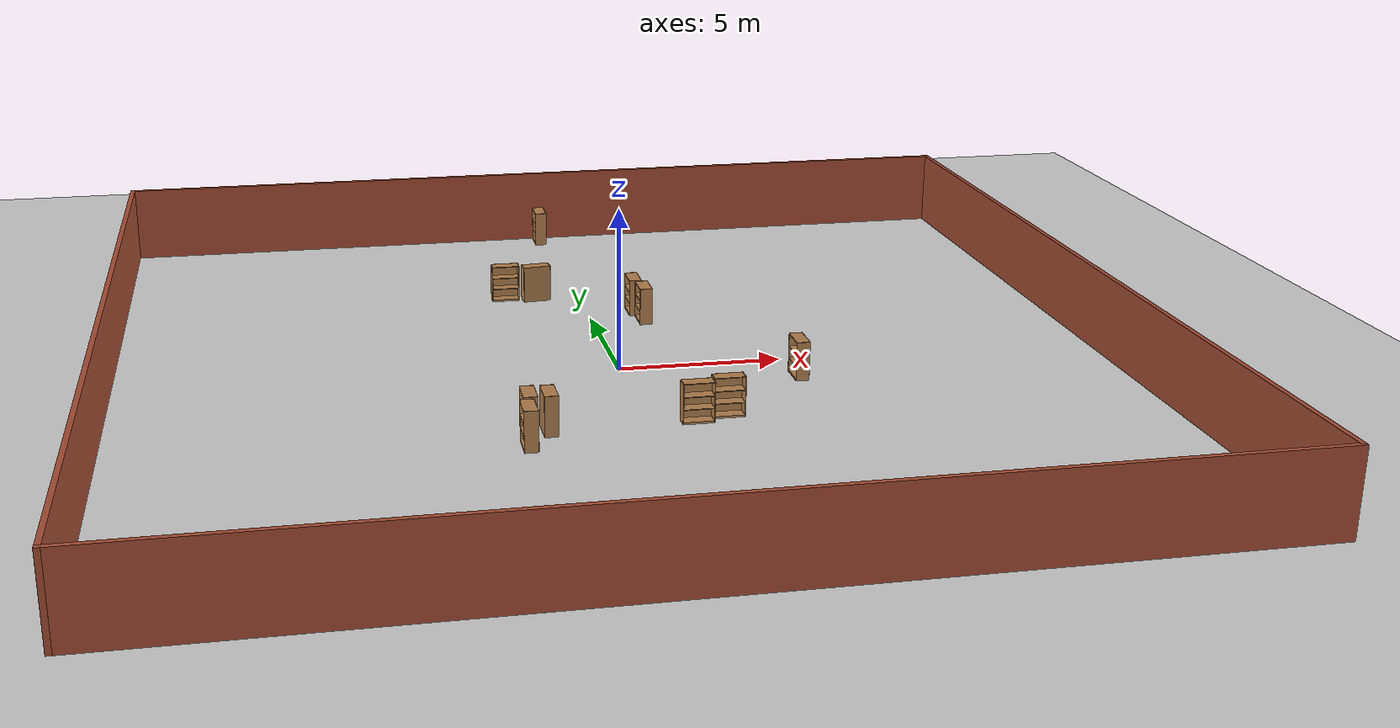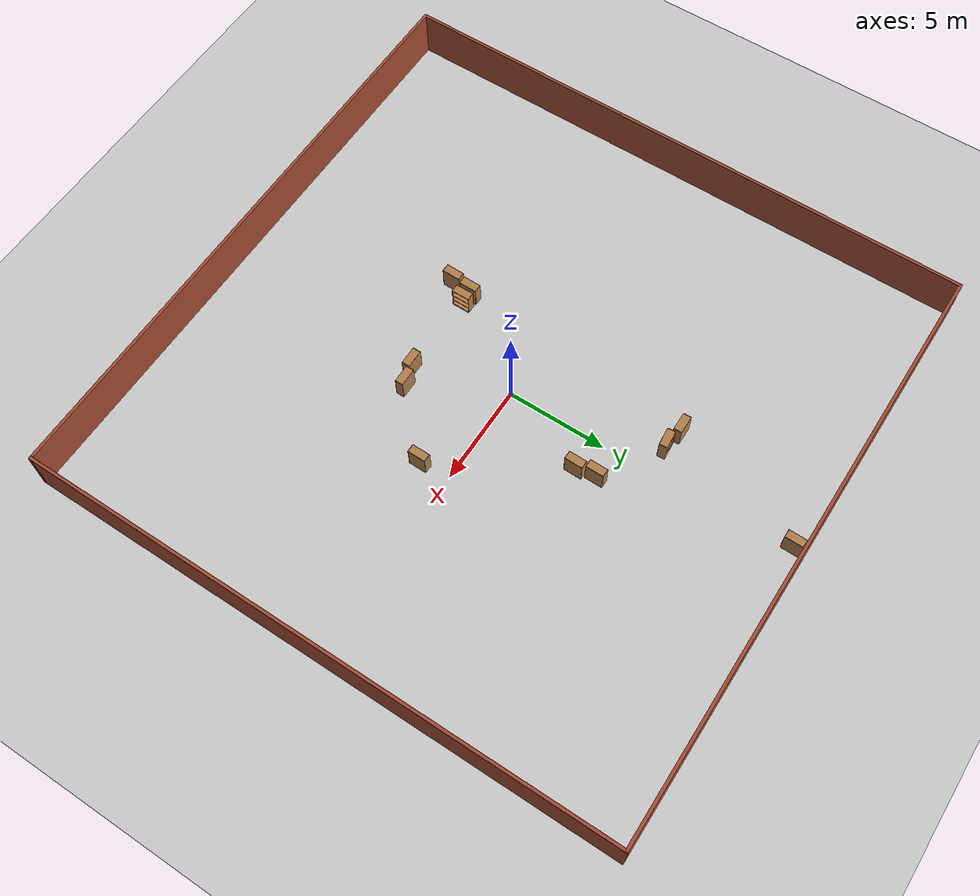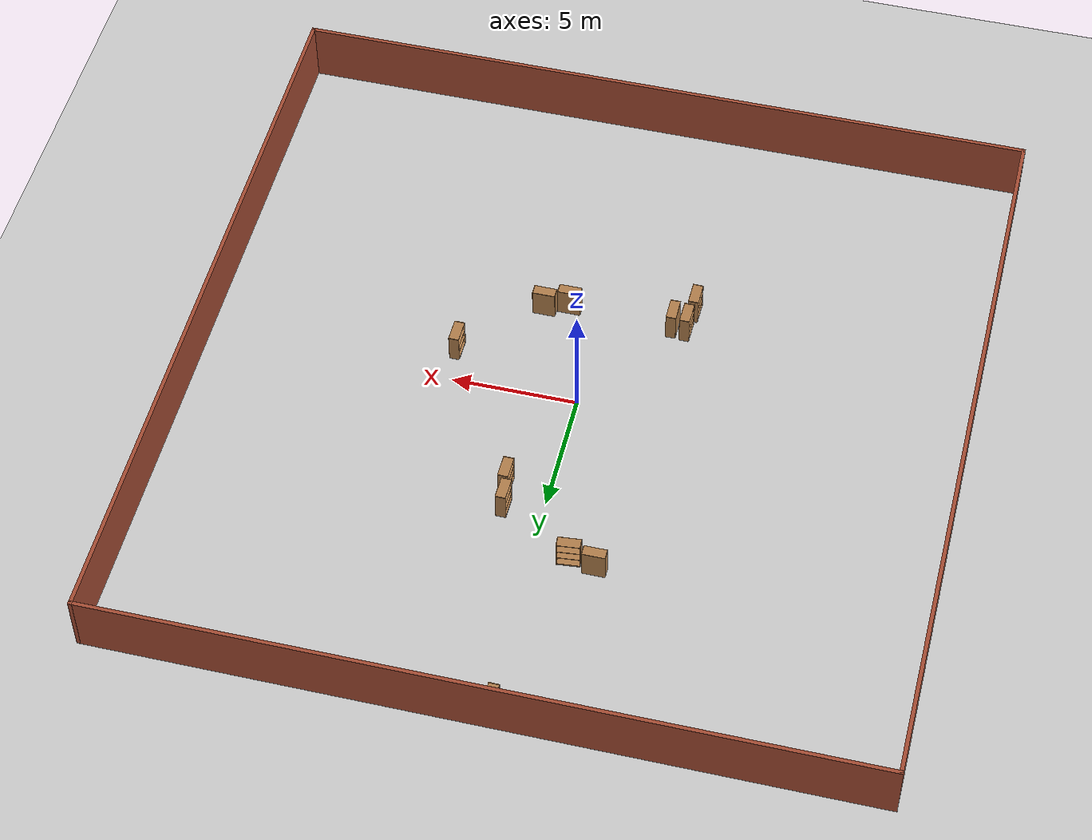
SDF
<sdf version="1.6">
 <world name="default">
  <model name="ground_plane">
   <static>1</static>
   <link name="link">
    <collision name="collision">
     <geometry><plane><normal>0 0 1</normal><size>100 100</size></plane></geometry>
     <surface>
      <contact><collide_bitmask>65535</collide_bitmask></contact>
      <friction><ode><mu>100</mu><mu2>50</mu2></ode></friction>
     </surface>
    </collision>
    <visual name="visual">
     <cast_shadows>0</cast_shadows>
     <geometry><plane><normal>0 0 1</normal><size>100 100</size></plane></geometry>
     <material>
      <script><uri>file://media/materials/scripts/gazebo.material</uri><name>Gazebo/Grey</name></script>
     </material>
    </visual>
   </link>
  </model>
  <model name="30x30_0">
   <link name="Wall_0">
    <collision name="Wall_0_Collision">
     <geometry><box><size>30.15 0.15 2.5</size></box></geometry>
     <pose>0 0 1.25 0 -0 0</pose>
    </collision>
    <visual name="Wall_0_Visual">
     <pose>0 0 1.25 0 -0 0</pose>
     <geometry><box><size>30.15 0.15 2.5</size></box></geometry>
     <material>
      <script><uri>file://media/materials/scripts/gazebo.material</uri><name>Gazebo/Bricks</name></script>
      <ambient>1 1 1 1</ambient>
     </material>
     <meta><layer>0</layer></meta>
    </visual>
    <pose>-15 0 0 0 -0 1.5708</pose>
   </link>
   <link name="Wall_1">
    <collision name="Wall_1_Collision">
     <geometry><box><size>30.15 0.15 2.5</size></box></geometry>
     <pose>0 0 1.25 0 -0 0</pose>
    </collision>
    <visual name="Wall_1_Visual">
     <pose>0 0 1.25 0 -0 0</pose>
     <geometry><box><size>30.15 0.15 2.5</size></box></geometry>
     <material>
      <script><uri>file://media/materials/scripts/gazebo.material</uri><name>Gazebo/Bricks</name></script>
      <ambient>1 1 1 1</ambient>
     </material>
     <meta><layer>0</layer></meta>
    </visual>
    <pose>0 15 0 0 -0 0</pose>
   </link>
   <link name="Wall_2">
    <collision name="Wall_2_Collision">
     <geometry><box><size>30.15 0.15 2.5</size></box></geometry>
     <pose>0 0 1.25 0 -0 0</pose>
    </collision>
    <visual name="Wall_2_Visual">
     <pose>0 0 1.25 0 -0 0</pose>
     <geometry><box><size>30.15 0.15 2.5</size></box></geometry>
     <material>
      <script><uri>file://media/materials/scripts/gazebo.material</uri><name>Gazebo/Bricks</name></script>
      <ambient>1 1 1 1</ambient>
     </material>
     <meta><layer>0</layer></meta>
    </visual>
    <pose>15 0 0 0 -0 -1.5708</pose>
   </link>
   <link name="Wall_3">
    <collision name="Wall_3_Collision">
     <geometry><box><size>30.15 0.15 2.5</size></box></geometry>
     <pose>0 0 1.25 0 -0 0</pose>
    </collision>
    <visual name="Wall_3_Visual">
     <pose>0 0 1.25 0 -0 0</pose>
     <geometry><box><size>30.15 0.15 2.5</size></box></geometry>
     <material>
      <script><uri>file://media/materials/scripts/gazebo.material</uri><name>Gazebo/Bricks</name></script>
      <ambient>1 1 1 1</ambient>
     </material>
     <meta><layer>0</layer></meta>
    </visual>
    <pose>0 -15 0 0 -0 3.14159</pose>
   </link>
   <static>1</static>
  </model>
  <model name="bookshelf_clone_clone_clone_0_clone_0_clone_3_clone_2_clone">
   <static>1</static>
   <link name="link">
    <inertial><mass>1</mass></inertial>
    <collision name="back">
     <pose>0 0.005 0.6 0 -0 0</pose>
     <geometry><box><size>0.9 0.01 1.2</size></box></geometry>
    </collision>
    <visual name="visual1">
     <pose>0 0.005 0.6 0 -0 0</pose>
     <geometry><box><size>0.9 0.01 1.2</size></box></geometry>
     <material>
      <script><uri>file://media/materials/scripts/gazebo.material</uri><name>Gazebo/Wood</name></script>
     </material>
    </visual>
    <collision name="left_side">
     <pose>0.45 -0.195 0.6 0 -0 0</pose>
     <geometry><box><size>0.02 0.4 1.2</size></box></geometry>
    </collision>
    <visual name="visual2">
     <pose>0.45 -0.195 0.6 0 -0 0</pose>
     <geometry><box><size>0.02 0.4 1.2</size></box></geometry>
     <material>
      <script><uri>file://media/materials/scripts/gazebo.material</uri><name>Gazebo/Wood</name></script>
     </material>
    </visual>
    <collision name="right_side">
     <pose>-0.45 -0.195 0.6 0 -0 0</pose>
     <geometry><box><size>0.02 0.4 1.2</size></box></geometry>
    </collision>
    <visual name="visual3">
     <pose>-0.45 -0.195 0.6 0 -0 0</pose>
     <geometry><box><size>0.02 0.4 1.2</size></box></geometry>
     <material>
      <script><uri>file://media/materials/scripts/gazebo.material</uri><name>Gazebo/Wood</name></script>
     </material>
    </visual>
    <collision name="bottom">
     <pose>0 -0.195 0.03 0 -0 0</pose>
     <geometry><box><size>0.88 0.4 0.06</size></box></geometry>
    </collision>
    <visual name="visual4">
     <pose>0 -0.195 0.03 0 -0 0</pose>
     <geometry><box><size>0.88 0.4 0.06</size></box></geometry>
     <material>
      <script><uri>file://media/materials/scripts/gazebo.material</uri><name>Gazebo/Wood</name></script>
     </material>
    </visual>
    <collision name="top">
     <pose>0 -0.195 1.19 0 -0 0</pose>
     <geometry><box><size>0.88 0.4 0.02</size></box></geometry>
    </collision>
    <visual name="visual5">
     <pose>0 -0.195 1.19 0 -0 0</pose>
     <geometry><box><size>0.88 0.4 0.02</size></box></geometry>
     <material>
      <script><uri>file://media/materials/scripts/gazebo.material</uri><name>Gazebo/Wood</name></script>
     </material>
    </visual>
    <collision name="low_shelf">
     <pose>0 -0.195 0.43 0 -0 0</pose>
     <geometry><box><size>0.88 0.4 0.02</size></box></geometry>
    </collision>
    <visual name="visual6">
     <pose>0 -0.195 0.43 0 -0 0</pose>
     <geometry><box><size>0.88 0.4 0.02</size></box></geometry>
     <material>
      <script><uri>file://media/materials/scripts/gazebo.material</uri><name>Gazebo/Wood</name></script>
     </material>
    </visual>
    <collision name="high_shelf">
     <pose>0 -0.195 0.8 0 -0 0</pose>
     <geometry><box><size>0.88 0.4 0.02</size></box></geometry>
    </collision>
    <visual name="visual7">
     <pose>0 -0.195 0.8 0 -0 0</pose>
     <geometry><box><size>0.88 0.4 0.02</size></box></geometry>
     <material>
      <script><uri>file://media/materials/scripts/gazebo.material</uri><name>Gazebo/Wood</name></script>
     </material>
    </visual>
   </link>
   <pose>2.33974 -4.06696 0 0 -0 0</pose>
  </model>
  <model name="bookshelf_clone_clone_clone_0_clone_0_clone_3_clone_2_clone_0">
   <static>1</static>
   <link name="link">
    <inertial><mass>1</mass></inertial>
    <collision name="back">
     <pose>0 0.005 0.6 0 -0 0</pose>
     <geometry><box><size>0.9 0.01 1.2</size></box></geometry>
    </collision>
    <visual name="visual1">
     <pose>0 0.005 0.6 0 -0 0</pose>
     <geometry><box><size>0.9 0.01 1.2</size></box></geometry>
     <material>
      <script><uri>file://media/materials/scripts/gazebo.material</uri><name>Gazebo/Wood</name></script>
     </material>
    </visual>
    <collision name="left_side">
     <pose>0.45 -0.195 0.6 0 -0 0</pose>
     <geometry><box><size>0.02 0.4 1.2</size></box></geometry>
    </collision>
    <visual name="visual2">
     <pose>0.45 -0.195 0.6 0 -0 0</pose>
     <geometry><box><size>0.02 0.4 1.2</size></box></geometry>
     <material>
      <script><uri>file://media/materials/scripts/gazebo.material</uri><name>Gazebo/Wood</name></script>
     </material>
    </visual>
    <collision name="right_side">
     <pose>-0.45 -0.195 0.6 0 -0 0</pose>
     <geometry><box><size>0.02 0.4 1.2</size></box></geometry>
    </collision>
    <visual name="visual3">
     <pose>-0.45 -0.195 0.6 0 -0 0</pose>
     <geometry><box><size>0.02 0.4 1.2</size></box></geometry>
     <material>
      <script><uri>file://media/materials/scripts/gazebo.material</uri><name>Gazebo/Wood</name></script>
     </material>
    </visual>
    <collision name="bottom">
     <pose>0 -0.195 0.03 0 -0 0</pose>
     <geometry><box><size>0.88 0.4 0.06</size></box></geometry>
    </collision>
    <visual name="visual4">
     <pose>0 -0.195 0.03 0 -0 0</pose>
     <geometry><box><size>0.88 0.4 0.06</size></box></geometry>
     <material>
      <script><uri>file://media/materials/scripts/gazebo.material</uri><name>Gazebo/Wood</name></script>
     </material>
    </visual>
    <collision name="top">
     <pose>0 -0.195 1.19 0 -0 0</pose>
     <geometry><box><size>0.88 0.4 0.02</size></box></geometry>
    </collision>
    <visual name="visual5">
     <pose>0 -0.195 1.19 0 -0 0</pose>
     <geometry><box><size>0.88 0.4 0.02</size></box></geometry>
     <material>
      <script><uri>file://media/materials/scripts/gazebo.material</uri><name>Gazebo/Wood</name></script>
     </material>
    </visual>
    <collision name="low_shelf">
     <pose>0 -0.195 0.43 0 -0 0</pose>
     <geometry><box><size>0.88 0.4 0.02</size></box></geometry>
    </collision>
    <visual name="visual6">
     <pose>0 -0.195 0.43 0 -0 0</pose>
     <geometry><box><size>0.88 0.4 0.02</size></box></geometry>
     <material>
      <script><uri>file://media/materials/scripts/gazebo.material</uri><name>Gazebo/Wood</name></script>
     </material>
    </visual>
    <collision name="high_shelf">
     <pose>0 -0.195 0.8 0 -0 0</pose>
     <geometry><box><size>0.88 0.4 0.02</size></box></geometry>
    </collision>
    <visual name="visual7">
     <pose>0 -0.195 0.8 0 -0 0</pose>
     <geometry><box><size>0.88 0.4 0.02</size></box></geometry>
     <material>
      <script><uri>file://media/materials/scripts/gazebo.material</uri><name>Gazebo/Wood</name></script>
     </material>
    </visual>
   </link>
   <pose>1.38752 -4.35604 0 0 -0 0</pose>
  </model>
  <model name="bookshelf_clone_0_clone_clone_2_clone_2_clone_3_clone_0_clone_0">
   <static>1</static>
   <link name="link">
    <inertial><mass>1</mass></inertial>
    <collision name="back">
     <pose>0 0.005 0.6 0 -0 0</pose>
     <geometry><box><size>0.9 0.01 1.2</size></box></geometry>
    </collision>
    <visual name="visual1">
     <pose>0 0.005 0.6 0 -0 0</pose>
     <geometry><box><size>0.9 0.01 1.2</size></box></geometry>
     <material>
      <script><uri>file://media/materials/scripts/gazebo.material</uri><name>Gazebo/Wood</name></script>
     </material>
    </visual>
    <collision name="left_side">
     <pose>0.45 -0.195 0.6 0 -0 0</pose>
     <geometry><box><size>0.02 0.4 1.2</size></box></geometry>
    </collision>
    <visual name="visual2">
     <pose>0.45 -0.195 0.6 0 -0 0</pose>
     <geometry><box><size>0.02 0.4 1.2</size></box></geometry>
     <material>
      <script><uri>file://media/materials/scripts/gazebo.material</uri><name>Gazebo/Wood</name></script>
     </material>
    </visual>
    <collision name="right_side">
     <pose>-0.45 -0.195 0.6 0 -0 0</pose>
     <geometry><box><size>0.02 0.4 1.2</size></box></geometry>
    </collision>
    <visual name="visual3">
     <pose>-0.45 -0.195 0.6 0 -0 0</pose>
     <geometry><box><size>0.02 0.4 1.2</size></box></geometry>
     <material>
      <script><uri>file://media/materials/scripts/gazebo.material</uri><name>Gazebo/Wood</name></script>
     </material>
    </visual>
    <collision name="bottom">
     <pose>0 -0.195 0.03 0 -0 0</pose>
     <geometry><box><size>0.88 0.4 0.06</size></box></geometry>
    </collision>
    <visual name="visual4">
     <pose>0 -0.195 0.03 0 -0 0</pose>
     <geometry><box><size>0.88 0.4 0.06</size></box></geometry>
     <material>
      <script><uri>file://media/materials/scripts/gazebo.material</uri><name>Gazebo/Wood</name></script>
     </material>
    </visual>
    <collision name="top">
     <pose>0 -0.195 1.19 0 -0 0</pose>
     <geometry><box><size>0.88 0.4 0.02</size></box></geometry>
    </collision>
    <visual name="visual5">
     <pose>0 -0.195 1.19 0 -0 0</pose>
     <geometry><box><size>0.88 0.4 0.02</size></box></geometry>
     <material>
      <script><uri>file://media/materials/scripts/gazebo.material</uri><name>Gazebo/Wood</name></script>
     </material>
    </visual>
    <collision name="low_shelf">
     <pose>0 -0.195 0.43 0 -0 0</pose>
     <geometry><box><size>0.88 0.4 0.02</size></box></geometry>
    </collision>
    <visual name="visual6">
     <pose>0 -0.195 0.43 0 -0 0</pose>
     <geometry><box><size>0.88 0.4 0.02</size></box></geometry>
     <material>
      <script><uri>file://media/materials/scripts/gazebo.material</uri><name>Gazebo/Wood</name></script>
     </material>
    </visual>
    <collision name="high_shelf">
     <pose>0 -0.195 0.8 0 -0 0</pose>
     <geometry><box><size>0.88 0.4 0.02</size></box></geometry>
    </collision>
    <visual name="visual7">
     <pose>0 -0.195 0.8 0 -0 0</pose>
     <geometry><box><size>0.88 0.4 0.02</size></box></geometry>
     <material>
      <script><uri>file://media/materials/scripts/gazebo.material</uri><name>Gazebo/Wood</name></script>
     </material>
    </visual>
   </link>
   <pose>-0.128268 14.4162 0 0 0 -1.58271</pose>
  </model>
  <model name="bookshelf_clone_0_clone_clone_2_clone_2_clone_3_clone_0_clone_clone_0">
   <static>1</static>
   <link name="link">
    <inertial><mass>1</mass></inertial>
    <collision name="back">
     <pose>0 0.005 0.6 0 -0 0</pose>
     <geometry><box><size>0.9 0.01 1.2</size></box></geometry>
    </collision>
    <visual name="visual1">
     <pose>0 0.005 0.6 0 -0 0</pose>
     <geometry><box><size>0.9 0.01 1.2</size></box></geometry>
     <material>
      <script><uri>file://media/materials/scripts/gazebo.material</uri><name>Gazebo/Wood</name></script>
     </material>
    </visual>
    <collision name="left_side">
     <pose>0.45 -0.195 0.6 0 -0 0</pose>
     <geometry><box><size>0.02 0.4 1.2</size></box></geometry>
    </collision>
    <visual name="visual2">
     <pose>0.45 -0.195 0.6 0 -0 0</pose>
     <geometry><box><size>0.02 0.4 1.2</size></box></geometry>
     <material>
      <script><uri>file://media/materials/scripts/gazebo.material</uri><name>Gazebo/Wood</name></script>
     </material>
    </visual>
    <collision name="right_side">
     <pose>-0.45 -0.195 0.6 0 -0 0</pose>
     <geometry><box><size>0.02 0.4 1.2</size></box></geometry>
    </collision>
    <visual name="visual3">
     <pose>-0.45 -0.195 0.6 0 -0 0</pose>
     <geometry><box><size>0.02 0.4 1.2</size></box></geometry>
     <material>
      <script><uri>file://media/materials/scripts/gazebo.material</uri><name>Gazebo/Wood</name></script>
     </material>
    </visual>
    <collision name="bottom">
     <pose>0 -0.195 0.03 0 -0 0</pose>
     <geometry><box><size>0.88 0.4 0.06</size></box></geometry>
    </collision>
    <visual name="visual4">
     <pose>0 -0.195 0.03 0 -0 0</pose>
     <geometry><box><size>0.88 0.4 0.06</size></box></geometry>
     <material>
      <script><uri>file://media/materials/scripts/gazebo.material</uri><name>Gazebo/Wood</name></script>
     </material>
    </visual>
    <collision name="top">
     <pose>0 -0.195 1.19 0 -0 0</pose>
     <geometry><box><size>0.88 0.4 0.02</size></box></geometry>
    </collision>
    <visual name="visual5">
     <pose>0 -0.195 1.19 0 -0 0</pose>
     <geometry><box><size>0.88 0.4 0.02</size></box></geometry>
     <material>
      <script><uri>file://media/materials/scripts/gazebo.material</uri><name>Gazebo/Wood</name></script>
     </material>
    </visual>
    <collision name="low_shelf">
     <pose>0 -0.195 0.43 0 -0 0</pose>
     <geometry><box><size>0.88 0.4 0.02</size></box></geometry>
    </collision>
    <visual name="visual6">
     <pose>0 -0.195 0.43 0 -0 0</pose>
     <geometry><box><size>0.88 0.4 0.02</size></box></geometry>
     <material>
      <script><uri>file://media/materials/scripts/gazebo.material</uri><name>Gazebo/Wood</name></script>
     </material>
    </visual>
    <collision name="high_shelf">
     <pose>0 -0.195 0.8 0 -0 0</pose>
     <geometry><box><size>0.88 0.4 0.02</size></box></geometry>
    </collision>
    <visual name="visual7">
     <pose>0 -0.195 0.8 0 -0 0</pose>
     <geometry><box><size>0.88 0.4 0.02</size></box></geometry>
     <material>
      <script><uri>file://media/materials/scripts/gazebo.material</uri><name>Gazebo/Wood</name></script>
     </material>
    </visual>
   </link>
   <pose>5.38842 -1.4871 0 0 0 -1.58271</pose>
  </model>
  <model name="bookshelf_clone_0_clone_clone_2_clone_2_clone_3_clone_0_clone_clone_clone">
   <static>1</static>
   <link name="link">
    <inertial><mass>1</mass></inertial>
    <collision name="back">
     <pose>0 0.005 0.6 0 -0 0</pose>
     <geometry><box><size>0.9 0.01 1.2</size></box></geometry>
    </collision>
    <visual name="visual1">
     <pose>0 0.005 0.6 0 -0 0</pose>
     <geometry><box><size>0.9 0.01 1.2</size></box></geometry>
     <material>
      <script><uri>file://media/materials/scripts/gazebo.material</uri><name>Gazebo/Wood</name></script>
     </material>
    </visual>
    <collision name="left_side">
     <pose>0.45 -0.195 0.6 0 -0 0</pose>
     <geometry><box><size>0.02 0.4 1.2</size></box></geometry>
    </collision>
    <visual name="visual2">
     <pose>0.45 -0.195 0.6 0 -0 0</pose>
     <geometry><box><size>0.02 0.4 1.2</size></box></geometry>
     <material>
      <script><uri>file://media/materials/scripts/gazebo.material</uri><name>Gazebo/Wood</name></script>
     </material>
    </visual>
    <collision name="right_side">
     <pose>-0.45 -0.195 0.6 0 -0 0</pose>
     <geometry><box><size>0.02 0.4 1.2</size></box></geometry>
    </collision>
    <visual name="visual3">
     <pose>-0.45 -0.195 0.6 0 -0 0</pose>
     <geometry><box><size>0.02 0.4 1.2</size></box></geometry>
     <material>
      <script><uri>file://media/materials/scripts/gazebo.material</uri><name>Gazebo/Wood</name></script>
     </material>
    </visual>
    <collision name="bottom">
     <pose>0 -0.195 0.03 0 -0 0</pose>
     <geometry><box><size>0.88 0.4 0.06</size></box></geometry>
    </collision>
    <visual name="visual4">
     <pose>0 -0.195 0.03 0 -0 0</pose>
     <geometry><box><size>0.88 0.4 0.06</size></box></geometry>
     <material>
      <script><uri>file://media/materials/scripts/gazebo.material</uri><name>Gazebo/Wood</name></script>
     </material>
    </visual>
    <collision name="top">
     <pose>0 -0.195 1.19 0 -0 0</pose>
     <geometry><box><size>0.88 0.4 0.02</size></box></geometry>
    </collision>
    <visual name="visual5">
     <pose>0 -0.195 1.19 0 -0 0</pose>
     <geometry><box><size>0.88 0.4 0.02</size></box></geometry>
     <material>
      <script><uri>file://media/materials/scripts/gazebo.material</uri><name>Gazebo/Wood</name></script>
     </material>
    </visual>
    <collision name="low_shelf">
     <pose>0 -0.195 0.43 0 -0 0</pose>
     <geometry><box><size>0.88 0.4 0.02</size></box></geometry>
    </collision>
    <visual name="visual6">
     <pose>0 -0.195 0.43 0 -0 0</pose>
     <geometry><box><size>0.88 0.4 0.02</size></box></geometry>
     <material>
      <script><uri>file://media/materials/scripts/gazebo.material</uri><name>Gazebo/Wood</name></script>
     </material>
    </visual>
    <collision name="high_shelf">
     <pose>0 -0.195 0.8 0 -0 0</pose>
     <geometry><box><size>0.88 0.4 0.02</size></box></geometry>
    </collision>
    <visual name="visual7">
     <pose>0 -0.195 0.8 0 -0 0</pose>
     <geometry><box><size>0.88 0.4 0.02</size></box></geometry>
     <material>
      <script><uri>file://media/materials/scripts/gazebo.material</uri><name>Gazebo/Wood</name></script>
     </material>
    </visual>
   </link>
   <pose>1.70564 5.50921 0 0 0 -1.58271</pose>
  </model>
  <model name="bookshelf_clone_0_clone_clone_2_clone_2_clone_3_clone_0_clone_2_clone">
   <static>1</static>
   <link name="link">
    <inertial><mass>1</mass></inertial>
    <collision name="back">
     <pose>0 0.005 0.6 0 -0 0</pose>
     <geometry><box><size>0.9 0.01 1.2</size></box></geometry>
    </collision>
    <visual name="visual1">
     <pose>0 0.005 0.6 0 -0 0</pose>
     <geometry><box><size>0.9 0.01 1.2</size></box></geometry>
     <material>
      <script><uri>file://media/materials/scripts/gazebo.material</uri><name>Gazebo/Wood</name></script>
     </material>
    </visual>
    <collision name="left_side">
     <pose>0.45 -0.195 0.6 0 -0 0</pose>
     <geometry><box><size>0.02 0.4 1.2</size></box></geometry>
    </collision>
    <visual name="visual2">
     <pose>0.45 -0.195 0.6 0 -0 0</pose>
     <geometry><box><size>0.02 0.4 1.2</size></box></geometry>
     <material>
      <script><uri>file://media/materials/scripts/gazebo.material</uri><name>Gazebo/Wood</name></script>
     </material>
    </visual>
    <collision name="right_side">
     <pose>-0.45 -0.195 0.6 0 -0 0</pose>
     <geometry><box><size>0.02 0.4 1.2</size></box></geometry>
    </collision>
    <visual name="visual3">
     <pose>-0.45 -0.195 0.6 0 -0 0</pose>
     <geometry><box><size>0.02 0.4 1.2</size></box></geometry>
     <material>
      <script><uri>file://media/materials/scripts/gazebo.material</uri><name>Gazebo/Wood</name></script>
     </material>
    </visual>
    <collision name="bottom">
     <pose>0 -0.195 0.03 0 -0 0</pose>
     <geometry><box><size>0.88 0.4 0.06</size></box></geometry>
    </collision>
    <visual name="visual4">
     <pose>0 -0.195 0.03 0 -0 0</pose>
     <geometry><box><size>0.88 0.4 0.06</size></box></geometry>
     <material>
      <script><uri>file://media/materials/scripts/gazebo.material</uri><name>Gazebo/Wood</name></script>
     </material>
    </visual>
    <collision name="top">
     <pose>0 -0.195 1.19 0 -0 0</pose>
     <geometry><box><size>0.88 0.4 0.02</size></box></geometry>
    </collision>
    <visual name="visual5">
     <pose>0 -0.195 1.19 0 -0 0</pose>
     <geometry><box><size>0.88 0.4 0.02</size></box></geometry>
     <material>
      <script><uri>file://media/materials/scripts/gazebo.material</uri><name>Gazebo/Wood</name></script>
     </material>
    </visual>
    <collision name="low_shelf">
     <pose>0 -0.195 0.43 0 -0 0</pose>
     <geometry><box><size>0.88 0.4 0.02</size></box></geometry>
    </collision>
    <visual name="visual6">
     <pose>0 -0.195 0.43 0 -0 0</pose>
     <geometry><box><size>0.88 0.4 0.02</size></box></geometry>
     <material>
      <script><uri>file://media/materials/scripts/gazebo.material</uri><name>Gazebo/Wood</name></script>
     </material>
    </visual>
    <collision name="high_shelf">
     <pose>0 -0.195 0.8 0 -0 0</pose>
     <geometry><box><size>0.88 0.4 0.02</size></box></geometry>
    </collision>
    <visual name="visual7">
     <pose>0 -0.195 0.8 0 -0 0</pose>
     <geometry><box><size>0.88 0.4 0.02</size></box></geometry>
     <material>
      <script><uri>file://media/materials/scripts/gazebo.material</uri><name>Gazebo/Wood</name></script>
     </material>
    </visual>
   </link>
   <pose>1.86746 4.51502 0 0 0 -1.58271</pose>
  </model>
  <model name="bookshelf_clone_clone_clone_0_clone_0_clone_3_clone_clone">
   <static>1</static>
   <link name="link">
    <inertial><mass>1</mass></inertial>
    <collision name="back">
     <pose>0 0.005 0.6 0 -0 0</pose>
     <geometry><box><size>0.9 0.01 1.2</size></box></geometry>
    </collision>
    <visual name="visual1">
     <pose>0 0.005 0.6 0 -0 0</pose>
     <geometry><box><size>0.9 0.01 1.2</size></box></geometry>
     <material>
      <script><uri>file://media/materials/scripts/gazebo.material</uri><name>Gazebo/Wood</name></script>
     </material>
    </visual>
    <collision name="left_side">
     <pose>0.45 -0.195 0.6 0 -0 0</pose>
     <geometry><box><size>0.02 0.4 1.2</size></box></geometry>
    </collision>
    <visual name="visual2">
     <pose>0.45 -0.195 0.6 0 -0 0</pose>
     <geometry><box><size>0.02 0.4 1.2</size></box></geometry>
     <material>
      <script><uri>file://media/materials/scripts/gazebo.material</uri><name>Gazebo/Wood</name></script>
     </material>
    </visual>
    <collision name="right_side">
     <pose>-0.45 -0.195 0.6 0 -0 0</pose>
     <geometry><box><size>0.02 0.4 1.2</size></box></geometry>
    </collision>
    <visual name="visual3">
     <pose>-0.45 -0.195 0.6 0 -0 0</pose>
     <geometry><box><size>0.02 0.4 1.2</size></box></geometry>
     <material>
      <script><uri>file://media/materials/scripts/gazebo.material</uri><name>Gazebo/Wood</name></script>
     </material>
    </visual>
    <collision name="bottom">
     <pose>0 -0.195 0.03 0 -0 0</pose>
     <geometry><box><size>0.88 0.4 0.06</size></box></geometry>
    </collision>
    <visual name="visual4">
     <pose>0 -0.195 0.03 0 -0 0</pose>
     <geometry><box><size>0.88 0.4 0.06</size></box></geometry>
     <material>
      <script><uri>file://media/materials/scripts/gazebo.material</uri><name>Gazebo/Wood</name></script>
     </material>
    </visual>
    <collision name="top">
     <pose>0 -0.195 1.19 0 -0 0</pose>
     <geometry><box><size>0.88 0.4 0.02</size></box></geometry>
    </collision>
    <visual name="visual5">
     <pose>0 -0.195 1.19 0 -0 0</pose>
     <geometry><box><size>0.88 0.4 0.02</size></box></geometry>
     <material>
      <script><uri>file://media/materials/scripts/gazebo.material</uri><name>Gazebo/Wood</name></script>
     </material>
    </visual>
    <collision name="low_shelf">
     <pose>0 -0.195 0.43 0 -0 0</pose>
     <geometry><box><size>0.88 0.4 0.02</size></box></geometry>
    </collision>
    <visual name="visual6">
     <pose>0 -0.195 0.43 0 -0 0</pose>
     <geometry><box><size>0.88 0.4 0.02</size></box></geometry>
     <material>
      <script><uri>file://media/materials/scripts/gazebo.material</uri><name>Gazebo/Wood</name></script>
     </material>
    </visual>
    <collision name="high_shelf">
     <pose>0 -0.195 0.8 0 -0 0</pose>
     <geometry><box><size>0.88 0.4 0.02</size></box></geometry>
    </collision>
    <visual name="visual7">
     <pose>0 -0.195 0.8 0 -0 0</pose>
     <geometry><box><size>0.88 0.4 0.02</size></box></geometry>
     <material>
      <script><uri>file://media/materials/scripts/gazebo.material</uri><name>Gazebo/Wood</name></script>
     </material>
    </visual>
   </link>
   <pose>-2.47751 7.76775 0 0 -0 0</pose>
  </model>
  <model name="bookshelf_clone_clone_clone_0_clone_0_clone_3_clone_clone_clone">
   <static>1</static>
   <link name="link">
    <inertial><mass>1</mass></inertial>
    <collision name="back">
     <pose>0 0.005 0.6 0 -0 0</pose>
     <geometry><box><size>0.9 0.01 1.2</size></box></geometry>
    </collision>
    <visual name="visual1">
     <pose>0 0.005 0.6 0 -0 0</pose>
     <geometry><box><size>0.9 0.01 1.2</size></box></geometry>
     <material>
      <script><uri>file://media/materials/scripts/gazebo.material</uri><name>Gazebo/Wood</name></script>
     </material>
    </visual>
    <collision name="left_side">
     <pose>0.45 -0.195 0.6 0 -0 0</pose>
     <geometry><box><size>0.02 0.4 1.2</size></box></geometry>
    </collision>
    <visual name="visual2">
     <pose>0.45 -0.195 0.6 0 -0 0</pose>
     <geometry><box><size>0.02 0.4 1.2</size></box></geometry>
     <material>
      <script><uri>file://media/materials/scripts/gazebo.material</uri><name>Gazebo/Wood</name></script>
     </material>
    </visual>
    <collision name="right_side">
     <pose>-0.45 -0.195 0.6 0 -0 0</pose>
     <geometry><box><size>0.02 0.4 1.2</size></box></geometry>
    </collision>
    <visual name="visual3">
     <pose>-0.45 -0.195 0.6 0 -0 0</pose>
     <geometry><box><size>0.02 0.4 1.2</size></box></geometry>
     <material>
      <script><uri>file://media/materials/scripts/gazebo.material</uri><name>Gazebo/Wood</name></script>
     </material>
    </visual>
    <collision name="bottom">
     <pose>0 -0.195 0.03 0 -0 0</pose>
     <geometry><box><size>0.88 0.4 0.06</size></box></geometry>
    </collision>
    <visual name="visual4">
     <pose>0 -0.195 0.03 0 -0 0</pose>
     <geometry><box><size>0.88 0.4 0.06</size></box></geometry>
     <material>
      <script><uri>file://media/materials/scripts/gazebo.material</uri><name>Gazebo/Wood</name></script>
     </material>
    </visual>
    <collision name="top">
     <pose>0 -0.195 1.19 0 -0 0</pose>
     <geometry><box><size>0.88 0.4 0.02</size></box></geometry>
    </collision>
    <visual name="visual5">
     <pose>0 -0.195 1.19 0 -0 0</pose>
     <geometry><box><size>0.88 0.4 0.02</size></box></geometry>
     <material>
      <script><uri>file://media/materials/scripts/gazebo.material</uri><name>Gazebo/Wood</name></script>
     </material>
    </visual>
    <collision name="low_shelf">
     <pose>0 -0.195 0.43 0 -0 0</pose>
     <geometry><box><size>0.88 0.4 0.02</size></box></geometry>
    </collision>
    <visual name="visual6">
     <pose>0 -0.195 0.43 0 -0 0</pose>
     <geometry><box><size>0.88 0.4 0.02</size></box></geometry>
     <material>
      <script><uri>file://media/materials/scripts/gazebo.material</uri><name>Gazebo/Wood</name></script>
     </material>
    </visual>
    <collision name="high_shelf">
     <pose>0 -0.195 0.8 0 -0 0</pose>
     <geometry><box><size>0.88 0.4 0.02</size></box></geometry>
    </collision>
    <visual name="visual7">
     <pose>0 -0.195 0.8 0 -0 0</pose>
     <geometry><box><size>0.88 0.4 0.02</size></box></geometry>
     <material>
      <script><uri>file://media/materials/scripts/gazebo.material</uri><name>Gazebo/Wood</name></script>
     </material>
    </visual>
   </link>
   <pose>-1.44232 7.18156 0 0 0 -3.04709</pose>
  </model>
  <model name="bookshelf_clone_0_clone_clone_2_clone_2_clone_3_clone_clone_clone_6_clone_3">
   <static>1</static>
   <link name="link">
    <inertial><mass>1</mass></inertial>
    <collision name="back">
     <pose>0 0.005 0.6 0 -0 0</pose>
     <geometry><box><size>0.9 0.01 1.2</size></box></geometry>
    </collision>
    <visual name="visual1">
     <pose>0 0.005 0.6 0 -0 0</pose>
     <geometry><box><size>0.9 0.01 1.2</size></box></geometry>
     <material>
      <script><uri>file://media/materials/scripts/gazebo.material</uri><name>Gazebo/Wood</name></script>
     </material>
    </visual>
    <collision name="left_side">
     <pose>0.45 -0.195 0.6 0 -0 0</pose>
     <geometry><box><size>0.02 0.4 1.2</size></box></geometry>
    </collision>
    <visual name="visual2">
     <pose>0.45 -0.195 0.6 0 -0 0</pose>
     <geometry><box><size>0.02 0.4 1.2</size></box></geometry>
     <material>
      <script><uri>file://media/materials/scripts/gazebo.material</uri><name>Gazebo/Wood</name></script>
     </material>
    </visual>
    <collision name="right_side">
     <pose>-0.45 -0.195 0.6 0 -0 0</pose>
     <geometry><box><size>0.02 0.4 1.2</size></box></geometry>
    </collision>
    <visual name="visual3">
     <pose>-0.45 -0.195 0.6 0 -0 0</pose>
     <geometry><box><size>0.02 0.4 1.2</size></box></geometry>
     <material>
      <script><uri>file://media/materials/scripts/gazebo.material</uri><name>Gazebo/Wood</name></script>
     </material>
    </visual>
    <collision name="bottom">
     <pose>0 -0.195 0.03 0 -0 0</pose>
     <geometry><box><size>0.88 0.4 0.06</size></box></geometry>
    </collision>
    <visual name="visual4">
     <pose>0 -0.195 0.03 0 -0 0</pose>
     <geometry><box><size>0.88 0.4 0.06</size></box></geometry>
     <material>
      <script><uri>file://media/materials/scripts/gazebo.material</uri><name>Gazebo/Wood</name></script>
     </material>
    </visual>
    <collision name="top">
     <pose>0 -0.195 1.19 0 -0 0</pose>
     <geometry><box><size>0.88 0.4 0.02</size></box></geometry>
    </collision>
    <visual name="visual5">
     <pose>0 -0.195 1.19 0 -0 0</pose>
     <geometry><box><size>0.88 0.4 0.02</size></box></geometry>
     <material>
      <script><uri>file://media/materials/scripts/gazebo.material</uri><name>Gazebo/Wood</name></script>
     </material>
    </visual>
    <collision name="low_shelf">
     <pose>0 -0.195 0.43 0 -0 0</pose>
     <geometry><box><size>0.88 0.4 0.02</size></box></geometry>
    </collision>
    <visual name="visual6">
     <pose>0 -0.195 0.43 0 -0 0</pose>
     <geometry><box><size>0.88 0.4 0.02</size></box></geometry>
     <material>
      <script><uri>file://media/materials/scripts/gazebo.material</uri><name>Gazebo/Wood</name></script>
     </material>
    </visual>
    <collision name="high_shelf">
     <pose>0 -0.195 0.8 0 -0 0</pose>
     <geometry><box><size>0.88 0.4 0.02</size></box></geometry>
    </collision>
    <visual name="visual7">
     <pose>0 -0.195 0.8 0 -0 0</pose>
     <geometry><box><size>0.88 0.4 0.02</size></box></geometry>
     <material>
      <script><uri>file://media/materials/scripts/gazebo.material</uri><name>Gazebo/Wood</name></script>
     </material>
    </visual>
   </link>
   <pose>-2.98904 -4.53128 0 0 -0 1.57201</pose>
  </model>
  <model name="bookshelf_clone_0_clone_clone_2_clone_2_clone_3_clone_0_clone_3">
   <static>1</static>
   <link name="link">
    <inertial><mass>1</mass></inertial>
    <collision name="back">
     <pose>0 0.005 0.6 0 -0 0</pose>
     <geometry><box><size>0.9 0.01 1.2</size></box></geometry>
    </collision>
    <visual name="visual1">
     <pose>0 0.005 0.6 0 -0 0</pose>
     <geometry><box><size>0.9 0.01 1.2</size></box></geometry>
     <material>
      <script><uri>file://media/materials/scripts/gazebo.material</uri><name>Gazebo/Wood</name></script>
     </material>
    </visual>
    <collision name="left_side">
     <pose>0.45 -0.195 0.6 0 -0 0</pose>
     <geometry><box><size>0.02 0.4 1.2</size></box></geometry>
    </collision>
    <visual name="visual2">
     <pose>0.45 -0.195 0.6 0 -0 0</pose>
     <geometry><box><size>0.02 0.4 1.2</size></box></geometry>
     <material>
      <script><uri>file://media/materials/scripts/gazebo.material</uri><name>Gazebo/Wood</name></script>
     </material>
    </visual>
    <collision name="right_side">
     <pose>-0.45 -0.195 0.6 0 -0 0</pose>
     <geometry><box><size>0.02 0.4 1.2</size></box></geometry>
    </collision>
    <visual name="visual3">
     <pose>-0.45 -0.195 0.6 0 -0 0</pose>
     <geometry><box><size>0.02 0.4 1.2</size></box></geometry>
     <material>
      <script><uri>file://media/materials/scripts/gazebo.material</uri><name>Gazebo/Wood</name></script>
     </material>
    </visual>
    <collision name="bottom">
     <pose>0 -0.195 0.03 0 -0 0</pose>
     <geometry><box><size>0.88 0.4 0.06</size></box></geometry>
    </collision>
    <visual name="visual4">
     <pose>0 -0.195 0.03 0 -0 0</pose>
     <geometry><box><size>0.88 0.4 0.06</size></box></geometry>
     <material>
      <script><uri>file://media/materials/scripts/gazebo.material</uri><name>Gazebo/Wood</name></script>
     </material>
    </visual>
    <collision name="top">
     <pose>0 -0.195 1.19 0 -0 0</pose>
     <geometry><box><size>0.88 0.4 0.02</size></box></geometry>
    </collision>
    <visual name="visual5">
     <pose>0 -0.195 1.19 0 -0 0</pose>
     <geometry><box><size>0.88 0.4 0.02</size></box></geometry>
     <material>
      <script><uri>file://media/materials/scripts/gazebo.material</uri><name>Gazebo/Wood</name></script>
     </material>
    </visual>
    <collision name="low_shelf">
     <pose>0 -0.195 0.43 0 -0 0</pose>
     <geometry><box><size>0.88 0.4 0.02</size></box></geometry>
    </collision>
    <visual name="visual6">
     <pose>0 -0.195 0.43 0 -0 0</pose>
     <geometry><box><size>0.88 0.4 0.02</size></box></geometry>
     <material>
      <script><uri>file://media/materials/scripts/gazebo.material</uri><name>Gazebo/Wood</name></script>
     </material>
    </visual>
    <collision name="high_shelf">
     <pose>0 -0.195 0.8 0 -0 0</pose>
     <geometry><box><size>0.88 0.4 0.02</size></box></geometry>
    </collision>
    <visual name="visual7">
     <pose>0 -0.195 0.8 0 -0 0</pose>
     <geometry><box><size>0.88 0.4 0.02</size></box></geometry>
     <material>
      <script><uri>file://media/materials/scripts/gazebo.material</uri><name>Gazebo/Wood</name></script>
     </material>
    </visual>
   </link>
   <pose>-3.16239 -4.49177 0 0 0 -1.58271</pose>
  </model>
  <model name="bookshelf_clone_0_clone_clone_2_clone_2_clone_3_clone_0_clone_3_clone">
   <static>1</static>
   <link name="link">
    <inertial><mass>1</mass></inertial>
    <collision name="back">
     <pose>0 0.005 0.6 0 -0 0</pose>
     <geometry><box><size>0.9 0.01 1.2</size></box></geometry>
    </collision>
    <visual name="visual1">
     <pose>0 0.005 0.6 0 -0 0</pose>
     <geometry><box><size>0.9 0.01 1.2</size></box></geometry>
     <material>
      <script><uri>file://media/materials/scripts/gazebo.material</uri><name>Gazebo/Wood</name></script>
     </material>
    </visual>
    <collision name="left_side">
     <pose>0.45 -0.195 0.6 0 -0 0</pose>
     <geometry><box><size>0.02 0.4 1.2</size></box></geometry>
    </collision>
    <visual name="visual2">
     <pose>0.45 -0.195 0.6 0 -0 0</pose>
     <geometry><box><size>0.02 0.4 1.2</size></box></geometry>
     <material>
      <script><uri>file://media/materials/scripts/gazebo.material</uri><name>Gazebo/Wood</name></script>
     </material>
    </visual>
    <collision name="right_side">
     <pose>-0.45 -0.195 0.6 0 -0 0</pose>
     <geometry><box><size>0.02 0.4 1.2</size></box></geometry>
    </collision>
    <visual name="visual3">
     <pose>-0.45 -0.195 0.6 0 -0 0</pose>
     <geometry><box><size>0.02 0.4 1.2</size></box></geometry>
     <material>
      <script><uri>file://media/materials/scripts/gazebo.material</uri><name>Gazebo/Wood</name></script>
     </material>
    </visual>
    <collision name="bottom">
     <pose>0 -0.195 0.03 0 -0 0</pose>
     <geometry><box><size>0.88 0.4 0.06</size></box></geometry>
    </collision>
    <visual name="visual4">
     <pose>0 -0.195 0.03 0 -0 0</pose>
     <geometry><box><size>0.88 0.4 0.06</size></box></geometry>
     <material>
      <script><uri>file://media/materials/scripts/gazebo.material</uri><name>Gazebo/Wood</name></script>
     </material>
    </visual>
    <collision name="top">
     <pose>0 -0.195 1.19 0 -0 0</pose>
     <geometry><box><size>0.88 0.4 0.02</size></box></geometry>
    </collision>
    <visual name="visual5">
     <pose>0 -0.195 1.19 0 -0 0</pose>
     <geometry><box><size>0.88 0.4 0.02</size></box></geometry>
     <material>
      <script><uri>file://media/materials/scripts/gazebo.material</uri><name>Gazebo/Wood</name></script>
     </material>
    </visual>
    <collision name="low_shelf">
     <pose>0 -0.195 0.43 0 -0 0</pose>
     <geometry><box><size>0.88 0.4 0.02</size></box></geometry>
    </collision>
    <visual name="visual6">
     <pose>0 -0.195 0.43 0 -0 0</pose>
     <geometry><box><size>0.88 0.4 0.02</size></box></geometry>
     <material>
      <script><uri>file://media/materials/scripts/gazebo.material</uri><name>Gazebo/Wood</name></script>
     </material>
    </visual>
    <collision name="high_shelf">
     <pose>0 -0.195 0.8 0 -0 0</pose>
     <geometry><box><size>0.88 0.4 0.02</size></box></geometry>
    </collision>
    <visual name="visual7">
     <pose>0 -0.195 0.8 0 -0 0</pose>
     <geometry><box><size>0.88 0.4 0.02</size></box></geometry>
     <material>
      <script><uri>file://media/materials/scripts/gazebo.material</uri><name>Gazebo/Wood</name></script>
     </material>
    </visual>
   </link>
   <pose>-3.29349 -5.53222 0 0 0 -1.58271</pose>
  </model>
 </world>
</sdf>
